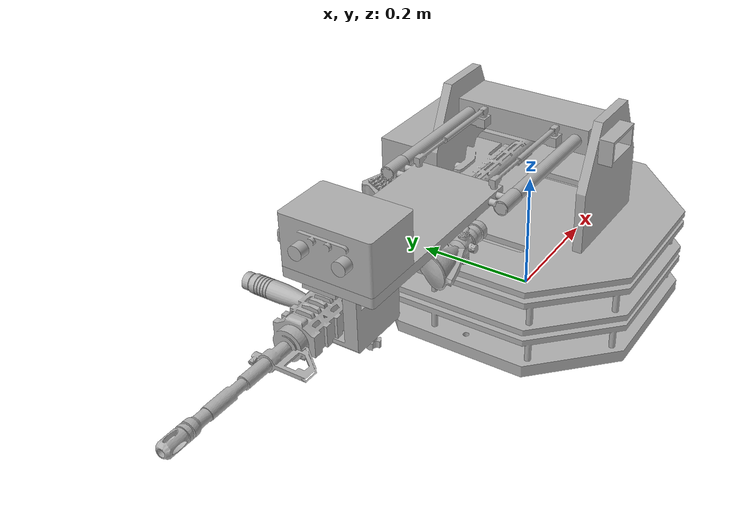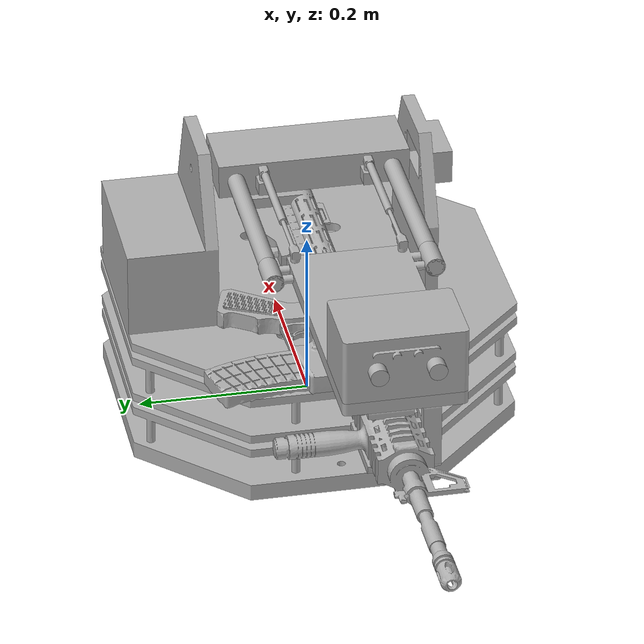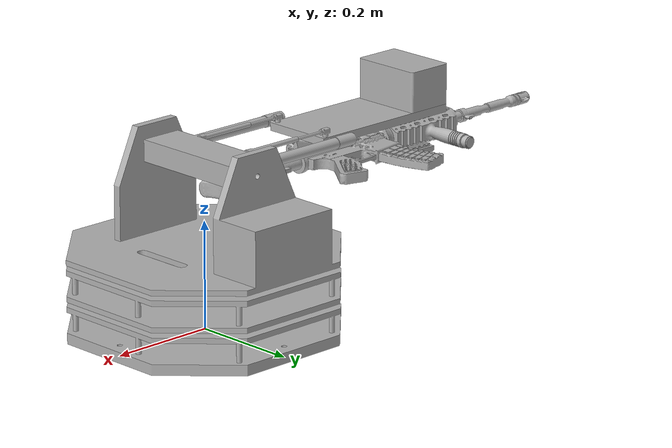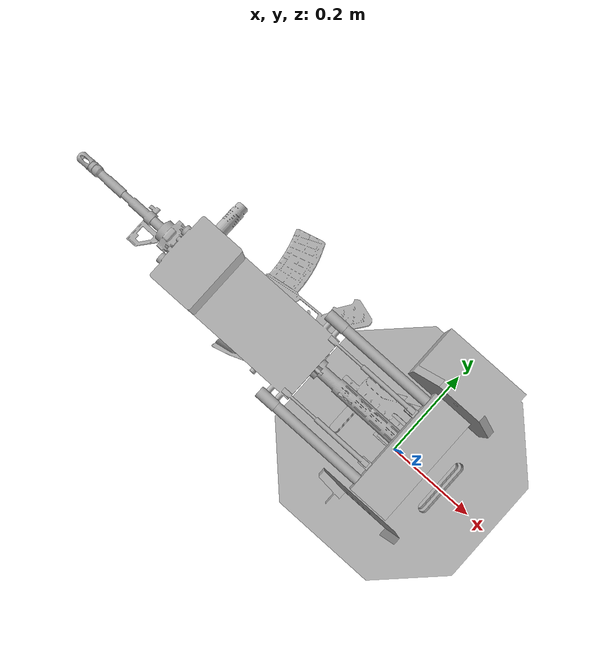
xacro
<?xml version="1.0" ?>
<robot name="turret_gun" xmlns:xacro="http://www.ros.org/wiki/xacro">
<link name="world"/>

<xacro:include filename="$(find turret_gun_description)/urdf/materials.xacro" />
<xacro:include filename="$(find turret_gun_description)/urdf/turret_gun.trans" />
<xacro:include filename="$(find turret_gun_description)/urdf/turret_gun.gazebo" />
<link name="base_link">
  <inertial>
    <origin xyz="9.373521496663862e-05 -6.361272598687226e-05 0.027170568172431686" rpy="0 0 0"/>
    <mass value="41.10708435453026"/>
    <inertia ixx="0.60785" iyy="0.604355" izz="1.16024" ixy="-0.0" iyz="3.1e-05" ixz="-0.000332"/>
  </inertial>
  <visual>
    <origin xyz="0 0 0" rpy="0 0 0"/>
    <geometry>
      <mesh filename="package://turret_gun_description/meshes/base_link.stl" scale="0.001 0.001 0.001"/>
    </geometry>
    <material name="silver"/>
  </visual>
  <collision>
    <origin xyz="0 0 0" rpy="0 0 0"/>
    <geometry>
      <mesh filename="package://turret_gun_description/meshes/base_link.stl" scale="0.001 0.001 0.001"/>
    </geometry>
  </collision>
</link>
<joint name="world_joint" type="fixed">
  <parent link="world"/>
  <child link="base_link"/>
  <origin xyz="0.0 0.0 0.0" rpy="0.0 0.0 0.0"/>
</joint>

<link name="turret_arm_1">
  <inertial>
    <origin xyz="-0.026938764185033902 -0.12059999992626305 -9.525817197669761e-05" rpy="0 0 0"/>
    <mass value="6.701140800274201"/>
    <inertia ixx="0.032778" iyy="0.031265" izz="0.062512" ixy="0.0" iyz="0.0" ixz="1.9e-05"/>
  </inertial>
  <visual>
    <origin xyz="-0.0 -0.12 -0.3116" rpy="0 0 0"/>
    <geometry>
      <mesh filename="package://turret_gun_description/meshes/turret_arm_1.stl" scale="0.001 0.001 0.001"/>
    </geometry>
    <material name="silver"/>
  </visual>
  <collision>
    <origin xyz="-0.0 -0.12 -0.3116" rpy="0 0 0"/>
    <geometry>
      <mesh filename="package://turret_gun_description/meshes/turret_arm_1.stl" scale="0.001 0.001 0.001"/>
    </geometry>
  </collision>
</link>

<link name="damper_1">
  <inertial>
    <origin xyz="-0.04970680527491242 -4.182806920272064e-07 0.011478551088175137" rpy="0 0 0"/>
    <mass value="0.027893148203222425"/>
    <inertia ixx="1e-06" iyy="4.1e-05" izz="4.1e-05" ixy="0.0" iyz="-0.0" ixz="1e-06"/>
  </inertial>
  <visual>
    <origin xyz="0.05 -0.06 -0.3146" rpy="0 0 0"/>
    <geometry>
      <mesh filename="package://turret_gun_description/meshes/damper_1.stl" scale="0.001 0.001 0.001"/>
    </geometry>
    <material name="silver"/>
  </visual>
  <collision>
    <origin xyz="0.05 -0.06 -0.3146" rpy="0 0 0"/>
    <geometry>
      <mesh filename="package://turret_gun_description/meshes/damper_1.stl" scale="0.001 0.001 0.001"/>
    </geometry>
  </collision>
</link>

<link name="damper__1__1">
  <inertial>
    <origin xyz="-0.04970680801063629 4.1828071395411115e-07 0.011478551406114257" rpy="0 0 0"/>
    <mass value="0.027893146719868547"/>
    <inertia ixx="1e-06" iyy="4.1e-05" izz="4.1e-05" ixy="-0.0" iyz="0.0" ixz="1e-06"/>
  </inertial>
  <visual>
    <origin xyz="0.05 0.0612 -0.3146" rpy="0 0 0"/>
    <geometry>
      <mesh filename="package://turret_gun_description/meshes/damper__1__1.stl" scale="0.001 0.001 0.001"/>
    </geometry>
    <material name="silver"/>
  </visual>
  <collision>
    <origin xyz="0.05 0.0612 -0.3146" rpy="0 0 0"/>
    <geometry>
      <mesh filename="package://turret_gun_description/meshes/damper__1__1.stl" scale="0.001 0.001 0.001"/>
    </geometry>
  </collision>
</link>

<link name="damper_piston_1">
  <inertial>
    <origin xyz="-0.08651883402817447 -9.15795217437676e-14 -0.0007071183360775057" rpy="0 0 0"/>
    <mass value="0.03302454957422005"/>
    <inertia ixx="0.0" iyy="5.2e-05" izz="5.2e-05" ixy="-0.0" iyz="0.0" ixz="-1e-06"/>
  </inertial>
  <visual>
    <origin xyz="0.1125 -0.06 -0.3266" rpy="0 0 0"/>
    <geometry>
      <mesh filename="package://turret_gun_description/meshes/damper_piston_1.stl" scale="0.001 0.001 0.001"/>
    </geometry>
    <material name="silver"/>
  </visual>
  <collision>
    <origin xyz="0.1125 -0.06 -0.3266" rpy="0 0 0"/>
    <geometry>
      <mesh filename="package://turret_gun_description/meshes/damper_piston_1.stl" scale="0.001 0.001 0.001"/>
    </geometry>
  </collision>
</link>

<link name="damper_piston__1__1">
  <inertial>
    <origin xyz="-0.08651883402817127 9.139911050226601e-14 -0.0007071183360772282" rpy="0 0 0"/>
    <mass value="0.033024549574216806"/>
    <inertia ixx="0.0" iyy="5.2e-05" izz="5.2e-05" ixy="0.0" iyz="-0.0" ixz="-1e-06"/>
  </inertial>
  <visual>
    <origin xyz="0.1125 0.0612 -0.3266" rpy="0 0 0"/>
    <geometry>
      <mesh filename="package://turret_gun_description/meshes/damper_piston__1__1.stl" scale="0.001 0.001 0.001"/>
    </geometry>
    <material name="silver"/>
  </visual>
  <collision>
    <origin xyz="0.1125 0.0612 -0.3266" rpy="0 0 0"/>
    <geometry>
      <mesh filename="package://turret_gun_description/meshes/damper_piston__1__1.stl" scale="0.001 0.001 0.001"/>
    </geometry>
  </collision>
</link>

<link name="gun_mount_1">
  <inertial>
    <origin xyz="-0.10430325878831453 -0.09059999481953235 -0.0024438005616064795" rpy="0 0 0"/>
    <mass value="5.108773316435007"/>
    <inertia ixx="0.008872" iyy="0.042133" izz="0.050807" ixy="0.0" iyz="0.0" ixz="-3.3e-05"/>
  </inertial>
  <visual>
    <origin xyz="0.27 -0.09 -0.3116" rpy="0 0 0"/>
    <geometry>
      <mesh filename="package://turret_gun_description/meshes/gun_mount_1.stl" scale="0.001 0.001 0.001"/>
    </geometry>
    <material name="silver"/>
  </visual>
  <collision>
    <origin xyz="0.27 -0.09 -0.3116" rpy="0 0 0"/>
    <geometry>
      <mesh filename="package://turret_gun_description/meshes/gun_mount_1.stl" scale="0.001 0.001 0.001"/>
    </geometry>
  </collision>
</link>

<link name="hog_saddle_1">
  <inertial>
    <origin xyz="-7.263126439782663e-06 0.0009074545183550813 -0.02920662033966631" rpy="0 0 0"/>
    <mass value="0.6599456694689808"/>
    <inertia ixx="0.000511" iyy="0.000513" izz="0.000712" ixy="0.0" iyz="-9.8e-05" ixz="-0.0"/>
  </inertial>
  <visual>
    <origin xyz="0.484 0.0006 -0.3196" rpy="0 0 0"/>
    <geometry>
      <mesh filename="package://turret_gun_description/meshes/hog_saddle_1.stl" scale="0.001 0.001 0.001"/>
    </geometry>
    <material name="silver"/>
  </visual>
  <collision>
    <origin xyz="0.484 0.0006 -0.3196" rpy="0 0 0"/>
    <geometry>
      <mesh filename="package://turret_gun_description/meshes/hog_saddle_1.stl" scale="0.001 0.001 0.001"/>
    </geometry>
  </collision>
</link>

<link name="hog_saddle_base_1">
  <inertial>
    <origin xyz="0.333996251970648 -0.19576492037139268 -0.2628797683325972" rpy="0 0 0"/>
    <mass value="1.299713336142242"/>
    <inertia ixx="0.001224" iyy="0.001499" izz="0.001644" ixy="0.0" iyz="0.000336" ixz="-0.0"/>
  </inertial>
  <visual>
    <origin xyz="0.818 -0.181 -0.5072" rpy="0 0 0"/>
    <geometry>
      <mesh filename="package://turret_gun_description/meshes/hog_saddle_base_1.stl" scale="0.001 0.001 0.001"/>
    </geometry>
    <material name="silver"/>
  </visual>
  <collision>
    <origin xyz="0.818 -0.181 -0.5072" rpy="0 0 0"/>
    <geometry>
      <mesh filename="package://turret_gun_description/meshes/hog_saddle_base_1.stl" scale="0.001 0.001 0.001"/>
    </geometry>
  </collision>
</link>

<link name="tighter_1">
  <inertial>
    <origin xyz="0.3140012995651275 -0.2115992496008716 -0.2646186519655006" rpy="0 0 0"/>
    <mass value="0.062218783214771464"/>
    <inertia ixx="6.2e-05" iyy="6.2e-05" izz="1e-06" ixy="0.0" iyz="-0.0" ixz="-0.0"/>
  </inertial>
  <visual>
    <origin xyz="0.798 -0.181 -0.5072" rpy="0 0 0"/>
    <geometry>
      <mesh filename="package://turret_gun_description/meshes/tighter_1.stl" scale="0.001 0.001 0.001"/>
    </geometry>
    <material name="silver"/>
  </visual>
  <collision>
    <origin xyz="0.798 -0.181 -0.5072" rpy="0 0 0"/>
    <geometry>
      <mesh filename="package://turret_gun_description/meshes/tighter_1.stl" scale="0.001 0.001 0.001"/>
    </geometry>
  </collision>
</link>

<link name="m4_carbine_rifle_1">
  <inertial>
    <origin xyz="0.41919926709229727 -0.21870797450273088 -0.20055020644160343" rpy="0 0 0"/>
    <mass value="10.846149070051426"/>
    <inertia ixx="0.024442" iyy="0.296206" izz="0.318682" ixy="-0.007435" iyz="9.9e-05" ixz="-0.000313"/>
  </inertial>
  <visual>
    <origin xyz="0.768104 -0.249 -0.4622" rpy="0 0 0"/>
    <geometry>
      <mesh filename="package://turret_gun_description/meshes/m4_carbine_rifle_1.stl" scale="0.001 0.001 0.001"/>
    </geometry>
    <material name="silver"/>
  </visual>
  <collision>
    <origin xyz="0.768104 -0.249 -0.4622" rpy="0 0 0"/>
    <geometry>
      <mesh filename="package://turret_gun_description/meshes/m4_carbine_rifle_1.stl" scale="0.001 0.001 0.001"/>
    </geometry>
  </collision>
</link>

<link name="sensor_module_1">
  <inertial>
    <origin xyz="0.04525296540620233 4.167673151034279e-16 0.02959095417462132" rpy="0 0 0"/>
    <mass value="7.139631620921316"/>
    <inertia ixx="0.014399" iyy="0.00819" izz="0.015814" ixy="0.0" iyz="-0.0" ixz="3.2e-05"/>
  </inertial>
  <visual>
    <origin xyz="0.533 0.0006 -0.3246" rpy="0 0 0"/>
    <geometry>
      <mesh filename="package://turret_gun_description/meshes/sensor_module_1.stl" scale="0.001 0.001 0.001"/>
    </geometry>
    <material name="silver"/>
  </visual>
  <collision>
    <origin xyz="0.533 0.0006 -0.3246" rpy="0 0 0"/>
    <geometry>
      <mesh filename="package://turret_gun_description/meshes/sensor_module_1.stl" scale="0.001 0.001 0.001"/>
    </geometry>
  </collision>
</link>

<link name="left_camera_1">
  <inertial>
    <origin xyz="6.661338147750939e-16 3.122502256758253e-17 -5.551115123125783e-17" rpy="0 0 0"/>
    <mass value="0.07398450699203961"/>
    <inertia ixx="4e-06" iyy="7e-06" izz="7e-06" ixy="0.0" iyz="-0.0" ixz="0.0"/>
  </inertial>
  <visual>
    <origin xyz="0.533 -0.03095 -0.3541" rpy="0 0 0"/>
    <geometry>
      <mesh filename="package://turret_gun_description/meshes/left_camera_1.stl" scale="0.001 0.001 0.001"/>
    </geometry>
    <material name="silver"/>
  </visual>
  <collision>
    <origin xyz="0.533 -0.03095 -0.3541" rpy="0 0 0"/>
    <geometry>
      <mesh filename="package://turret_gun_description/meshes/left_camera_1.stl" scale="0.001 0.001 0.001"/>
    </geometry>
  </collision>
</link>

<link name="right_camera_1">
  <inertial>
    <origin xyz="6.661338147750939e-16 -6.938893903907228e-17 -5.551115123125783e-17" rpy="0 0 0"/>
    <mass value="0.07398450699203961"/>
    <inertia ixx="4e-06" iyy="7e-06" izz="7e-06" ixy="0.0" iyz="-0.0" ixz="0.0"/>
  </inertial>
  <visual>
    <origin xyz="0.533 0.03215 -0.3541" rpy="0 0 0"/>
    <geometry>
      <mesh filename="package://turret_gun_description/meshes/right_camera_1.stl" scale="0.001 0.001 0.001"/>
    </geometry>
    <material name="silver"/>
  </visual>
  <collision>
    <origin xyz="0.533 0.03215 -0.3541" rpy="0 0 0"/>
    <geometry>
      <mesh filename="package://turret_gun_description/meshes/right_camera_1.stl" scale="0.001 0.001 0.001"/>
    </geometry>
  </collision>
</link>

<link name="rotating_base_1">
  <inertial>
    <origin xyz="0.0003544621140304518 -9.672671455459492e-05 0.10542891269925475" rpy="0 0 0"/>
    <mass value="27.034416417677345"/>
    <inertia ixx="0.405442" iyy="0.397659" izz="0.772022" ixy="-1e-06" iyz="1e-06" ixz="0.000172"/>
  </inertial>
  <visual>
    <origin xyz="-0.0 -0.0 -0.0" rpy="0 0 0"/>
    <geometry>
      <mesh filename="package://turret_gun_description/meshes/rotating_base_1.stl" scale="0.001 0.001 0.001"/>
    </geometry>
    <material name="silver"/>
  </visual>
  <collision>
    <origin xyz="-0.0 -0.0 -0.0" rpy="0 0 0"/>
    <geometry>
      <mesh filename="package://turret_gun_description/meshes/rotating_base_1.stl" scale="0.001 0.001 0.001"/>
    </geometry>
  </collision>
</link>

<link name="turret_base_1">
  <inertial>
    <origin xyz="0.00016054456809486622 0.06839484907330823 0.11355907695565969" rpy="0 0 0"/>
    <mass value="33.48743254001071"/>
    <inertia ixx="0.656599" iyy="0.318745" izz="0.816932" ixy="0.000411" iyz="-0.030468" ixz="8.8e-05"/>
  </inertial>
  <visual>
    <origin xyz="-0.0 -0.0 -0.0768" rpy="0 0 0"/>
    <geometry>
      <mesh filename="package://turret_gun_description/meshes/turret_base_1.stl" scale="0.001 0.001 0.001"/>
    </geometry>
    <material name="silver"/>
  </visual>
  <collision>
    <origin xyz="-0.0 -0.0 -0.0768" rpy="0 0 0"/>
    <geometry>
      <mesh filename="package://turret_gun_description/meshes/turret_base_1.stl" scale="0.001 0.001 0.001"/>
    </geometry>
  </collision>
</link>

<joint name="turret_joint" type="revolute">
  <origin xyz="0.0 0.12 0.2348" rpy="0 0 0"/>
  <parent link="turret_base_1"/>
  <child link="turret_arm_1"/>
  <axis xyz="0.0 1.0 0.0"/>
  <limit upper="1.22173" lower="-0.174533" effort="100" velocity="1"/>
</joint>

<joint name="Rigid58" type="fixed">
  <origin xyz="-0.05 -0.06 0.003" rpy="0 0 0"/>
  <parent link="turret_arm_1"/>
  <child link="damper_1"/>
</joint>

<joint name="Rigid59" type="fixed">
  <origin xyz="-0.05 -0.1812 0.003" rpy="0 0 0"/>
  <parent link="turret_arm_1"/>
  <child link="damper__1__1"/>
</joint>

<joint name="Slider60" type="fixed">
  <origin xyz="-0.0625 0.0 0.012" rpy="0 0 0"/>
  <parent link="damper_1"/>
  <child link="damper_piston_1"/>
</joint>

<joint name="Slider61" type="fixed">
  <origin xyz="-0.0625 0.0 0.012" rpy="0 0 0"/>
  <parent link="damper__1__1"/>
  <child link="damper_piston__1__1"/>
</joint>

<joint name="Slider62" type="fixed">
  <origin xyz="-0.27 -0.03 0.0" rpy="0 0 0"/>
  <parent link="turret_arm_1"/>
  <child link="gun_mount_1"/>
</joint>

<joint name="Rigid65" type="fixed">
  <origin xyz="-0.214 -0.0906 0.008" rpy="0 0 0"/>
  <parent link="gun_mount_1"/>
  <child link="hog_saddle_1"/>
</joint>

<joint name="Rigid66" type="fixed">
  <origin xyz="-0.334 0.1816 0.1876" rpy="0 0 0"/>
  <parent link="hog_saddle_1"/>
  <child link="hog_saddle_base_1"/>
</joint>

<joint name="Rigid67" type="fixed">
  <origin xyz="0.02 0.0 0.0" rpy="0 0 0"/>
  <parent link="hog_saddle_base_1"/>
  <child link="tighter_1"/>
</joint>

<joint name="Rigid68" type="fixed">
  <origin xyz="-0.284104 0.2496 0.1426" rpy="0 0 0"/>
  <parent link="hog_saddle_1"/>
  <child link="m4_carbine_rifle_1"/>
</joint>

<joint name="Rigid69" type="fixed">
  <origin xyz="-0.263 -0.0906 0.013" rpy="0 0 0"/>
  <parent link="gun_mount_1"/>
  <child link="sensor_module_1"/>
</joint>

<joint name="Rigid70" type="fixed">
  <origin xyz="0.0 0.03155 0.0295" rpy="0 0 3.14"/>
  <parent link="sensor_module_1"/>
  <child link="left_camera_1"/>
</joint>

<joint name="Rigid71" type="fixed">
  <origin xyz="0.0 -0.03155 0.0295" rpy="0 0 3.14"/>
  <parent link="sensor_module_1"/>
  <child link="right_camera_1"/>
</joint>

<joint name="base_joint" type="revolute">
  <origin xyz="0.0 0.0 0.0" rpy="0 0 0"/>
  <parent link="base_link"/>
  <child link="rotating_base_1"/>
  <axis xyz="0.0 0.0 -1.0"/>
  <limit upper="3.141593" lower="0.0" effort="100" velocity="1"/>
</joint>

<joint name="turret_base_joint" type="revolute">
  <origin xyz="0.0 0.0 0.0768" rpy="0 0 0"/>
  <parent link="rotating_base_1"/>
  <child link="turret_base_1"/>
  <axis xyz="0.0 0.0 -1.0"/>
  <limit upper="3.141593" lower="0.0" effort="100" velocity="1"/>
</joint>

</robot>

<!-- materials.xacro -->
<robot name="turret_gun" xmlns:xacro="http://www.ros.org/wiki/xacro" >

<material name="silver">
  <color rgba="0.700 0.700 0.700 1.000"/>
</material>

</robot>

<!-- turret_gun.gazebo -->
<robot name="turret_gun" xmlns:xacro="http://www.ros.org/wiki/xacro" >

<xacro:property name="body_color" value="Gazebo/Silver" />

<gazebo>
  <plugin name="control" filename="libgazebo_ros_control.so"/>
</gazebo>
<gazebo reference="base_link">
  <material>${body_color}</material>
  <mu1>0.2</mu1>
  <mu2>0.2</mu2>
  <selfCollide>true</selfCollide>
  <gravity>true</gravity>
</gazebo>

<gazebo reference="turret_arm_1">
  <material>${body_color}</material>
  <mu1>0.2</mu1>
  <mu2>0.2</mu2>
  <selfCollide>true</selfCollide>
</gazebo>

<gazebo reference="damper_1">
  <material>${body_color}</material>
  <mu1>0.2</mu1>
  <mu2>0.2</mu2>
  <selfCollide>true</selfCollide>
</gazebo>

<gazebo reference="damper__1__1">
  <material>${body_color}</material>
  <mu1>0.2</mu1>
  <mu2>0.2</mu2>
  <selfCollide>true</selfCollide>
</gazebo>

<gazebo reference="damper_piston_1">
  <material>${body_color}</material>
  <mu1>0.2</mu1>
  <mu2>0.2</mu2>
  <selfCollide>true</selfCollide>
</gazebo>

<gazebo reference="damper_piston__1__1">
  <material>${body_color}</material>
  <mu1>0.2</mu1>
  <mu2>0.2</mu2>
  <selfCollide>true</selfCollide>
</gazebo>

<gazebo reference="gun_mount_1">
  <material>${body_color}</material>
  <mu1>0.2</mu1>
  <mu2>0.2</mu2>
  <selfCollide>true</selfCollide>
</gazebo>

<gazebo reference="hog_saddle_1">
  <material>${body_color}</material>
  <mu1>0.2</mu1>
  <mu2>0.2</mu2>
  <selfCollide>true</selfCollide>
</gazebo>

<gazebo reference="hog_saddle_base_1">
  <material>${body_color}</material>
  <mu1>0.2</mu1>
  <mu2>0.2</mu2>
  <selfCollide>true</selfCollide>
</gazebo>

<gazebo reference="tighter_1">
  <material>${body_color}</material>
  <mu1>0.2</mu1>
  <mu2>0.2</mu2>
  <selfCollide>true</selfCollide>
</gazebo>

<gazebo reference="m4_carbine_rifle_1">
  <material>${body_color}</material>
  <mu1>0.2</mu1>
  <mu2>0.2</mu2>
  <selfCollide>true</selfCollide>
</gazebo>

<gazebo reference="sensor_module_1">
  <material>${body_color}</material>
  <mu1>0.2</mu1>
  <mu2>0.2</mu2>
  <selfCollide>true</selfCollide>
</gazebo>

<gazebo reference="left_camera_1">
  <material>${body_color}</material>
  <mu1>0.2</mu1>
  <mu2>0.2</mu2>
  <selfCollide>true</selfCollide>
</gazebo>

<gazebo reference="right_camera_1">
  <material>${body_color}</material>
  <mu1>0.2</mu1>
  <mu2>0.2</mu2>
  <selfCollide>true</selfCollide>
</gazebo>

<gazebo reference="rotating_base_1">
  <material>${body_color}</material>
  <mu1>0.2</mu1>
  <mu2>0.2</mu2>
  <selfCollide>true</selfCollide>
</gazebo>

<gazebo reference="turret_base_1">
  <material>${body_color}</material>
  <mu1>0.2</mu1>
  <mu2>0.2</mu2>
  <selfCollide>true</selfCollide>
</gazebo>

<!-- camera -->

  <!-- Depth camera -->
  <gazebo reference="left_camera_1">
    <sensor name="left_camera_1" type="depth">
      <update_rate>20</update_rate>
      <camera>
        <horizontal_fov>1.571</horizontal_fov>
        <image>
          <width>640</width>
          <height>480</height>
          <format>R8G8B8</format>
        </image>
        <clip>
          <near>0.05</near>
          <far>5</far>
        </clip>
      </camera>
      <plugin name="left_camera_1_controller" filename="libgazebo_ros_openni_kinect.so">
        <baseline>0.2</baseline>
        <alwaysOn>true</alwaysOn>
        <updateRate>1.0</updateRate>
        <cameraName>left_camera_1_ir</cameraName>
        <imageTopicName>/left_camera_1/color/image_raw</imageTopicName>
        <cameraInfoTopicName>/left_camera_1/color/camera_info</cameraInfoTopicName>
        <depthImageTopicName>/left_camera_1/depth/image_raw</depthImageTopicName>
        <depthImageInfoTopicName>/left_camera_1/depth/camera_info</depthImageInfoTopicName>
        <pointCloudTopicName>/left_camera_1/depth/points</pointCloudTopicName>
        <frameName>left_camera_1</frameName>
        <pointCloudCutoff>0.5</pointCloudCutoff>
        <pointCloudCutoffMax>5.0</pointCloudCutoffMax>
        <distortionK1>0.0000000</distortionK1>
        <distortionK2>0.0000000</distortionK2>
        <distortionK3>0.0000000</distortionK3>
        <distortionT1>0.0000000</distortionT1>
        <distortionT2>0.0000000</distortionT2>
        <CxPrime>0</CxPrime>
        <Cx>0</Cx>
        <Cy>0</Cy>
        <focalLength>0</focalLength>
        <hackBaseline>0</hackBaseline>
      </plugin>
    </sensor>
  </gazebo>

</robot>
